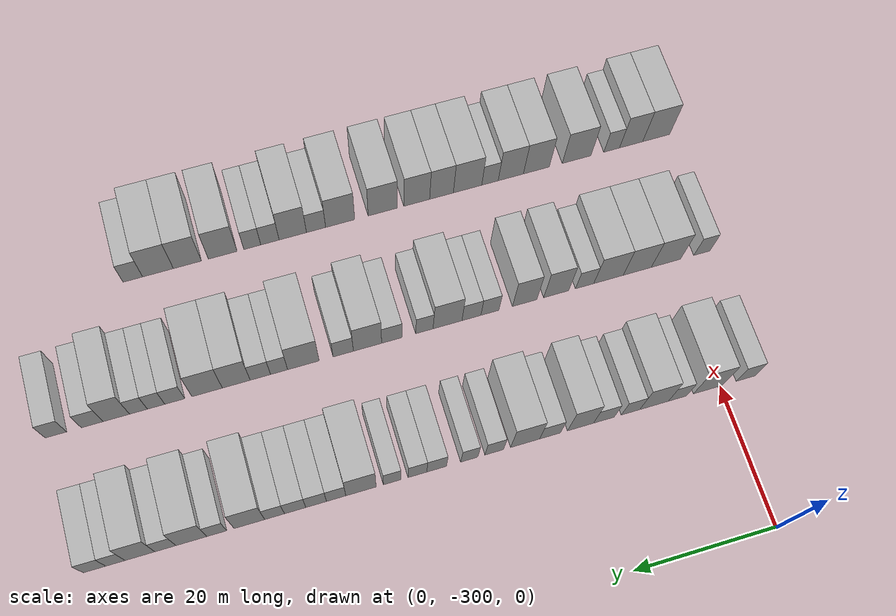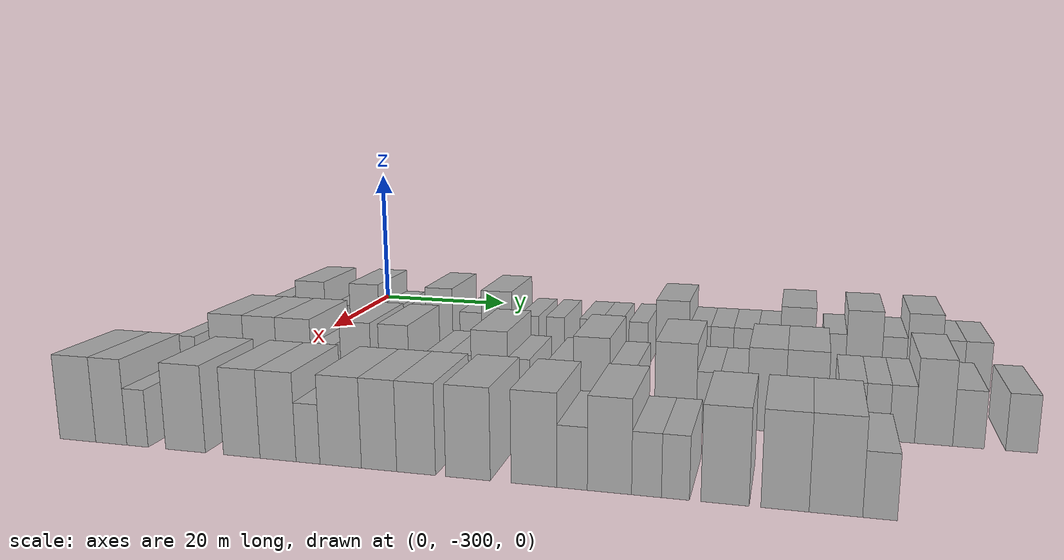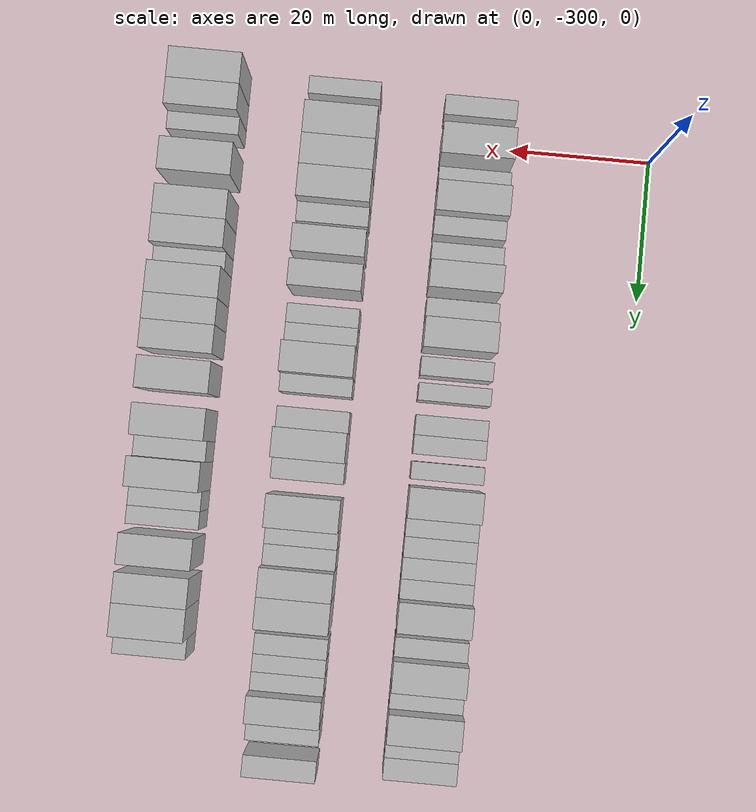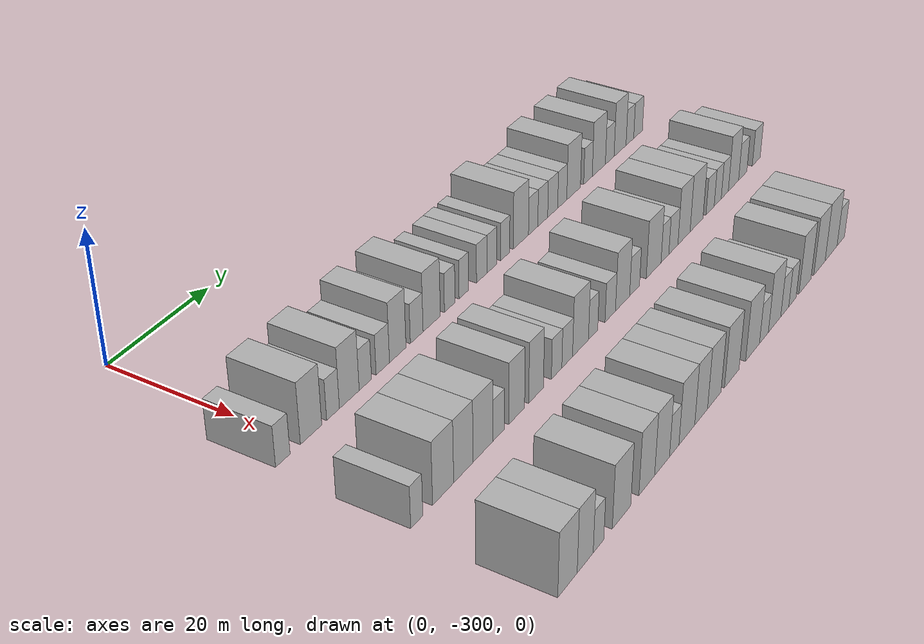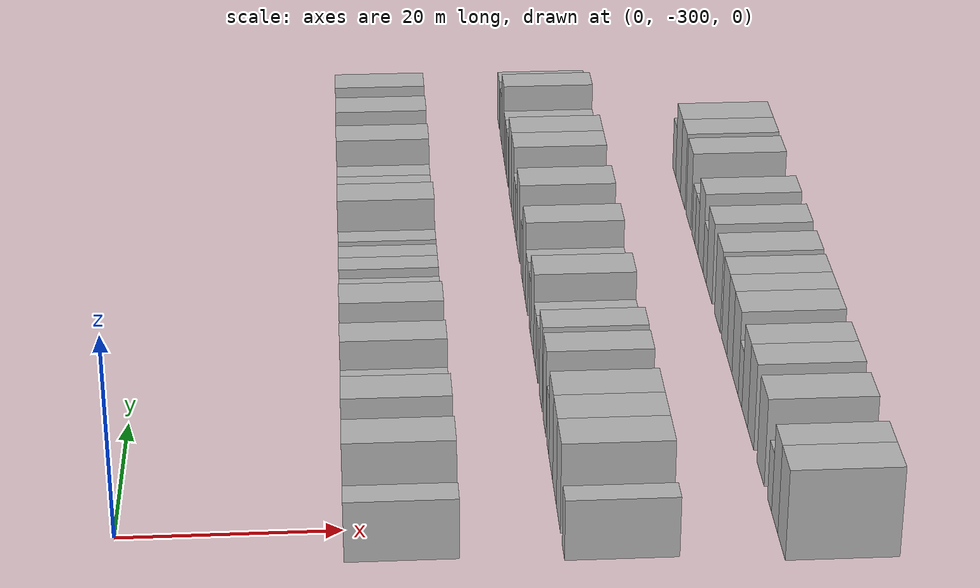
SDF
<sdf version="1.6">
 <world name="default">
  <model name="building_14">
   <static>1</static>
   <pose>25.0000 -303.7652 0 0.000000 0.000000 0.000000</pose>
   <link name="link">
    <pose>0 0 3.00 0 0 0</pose>
    <collision name="collision"><geometry><box><size>10.0000 2.7945 6.0000</size></box></geometry></collision>
    <visual name="visual">
     <cast_shadows>0</cast_shadows>
     <geometry><box><size>10.0000 2.7945 6.0000</size></box></geometry>
     <material>
      <script>
       <uri>model://HANNAS_wall/materials/scripts</uri>
       <uri>model://HANNAS_wall/materials/textures</uri>
       <name>vrc/HANNAS_wall</name>
      </script>
     </material>
    </visual>
   </link>
  </model>
  <model name="building_15">
   <static>1</static>
   <pose>25.0000 -298.2348 0 0.000000 0.000000 0.000000</pose>
   <link name="link">
    <pose>0 0 4.50 0 0 0</pose>
    <collision name="collision"><geometry><box><size>10.0000 4.2664 9.0000</size></box></geometry></collision>
    <visual name="visual">
     <cast_shadows>0</cast_shadows>
     <geometry><box><size>10.0000 4.2664 9.0000</size></box></geometry>
     <material>
      <script>
       <uri>model://HANNAS_wall/materials/scripts</uri>
       <uri>model://HANNAS_wall/materials/textures</uri>
       <name>vrc/HANNAS_wall</name>
      </script>
     </material>
    </visual>
   </link>
  </model>
  <model name="building_16">
   <static>1</static>
   <pose>25.0000 -293.7850 0 0.000000 0.000000 0.000000</pose>
   <link name="link">
    <pose>0 0 3.00 0 0 0</pose>
    <collision name="collision"><geometry><box><size>10.0000 2.6332 6.0000</size></box></geometry></collision>
    <visual name="visual">
     <cast_shadows>0</cast_shadows>
     <geometry><box><size>10.0000 2.6332 6.0000</size></box></geometry>
     <material>
      <script>
       <uri>model://HANNAS_wall/materials/scripts</uri>
       <uri>model://HANNAS_wall/materials/textures</uri>
       <name>vrc/HANNAS_wall</name>
      </script>
     </material>
    </visual>
   </link>
  </model>
  <model name="building_17">
   <static>1</static>
   <pose>25.0000 -290.3831 0 0.000000 0.000000 0.000000</pose>
   <link name="link">
    <pose>0 0 4.50 0 0 0</pose>
    <collision name="collision"><geometry><box><size>10.0000 4.1705 9.0000</size></box></geometry></collision>
    <visual name="visual">
     <cast_shadows>0</cast_shadows>
     <geometry><box><size>10.0000 4.1705 9.0000</size></box></geometry>
     <material>
      <script>
       <uri>model://HANNAS_wall/materials/scripts</uri>
       <uri>model://HANNAS_wall/materials/textures</uri>
       <name>vrc/HANNAS_wall</name>
      </script>
     </material>
    </visual>
   </link>
  </model>
  <model name="building_18">
   <static>1</static>
   <pose>25.0000 -286.9610 0 0.000000 0.000000 0.000000</pose>
   <link name="link">
    <pose>0 0 3.00 0 0 0</pose>
    <collision name="collision"><geometry><box><size>10.0000 2.6737 6.0000</size></box></geometry></collision>
    <visual name="visual">
     <cast_shadows>0</cast_shadows>
     <geometry><box><size>10.0000 2.6737 6.0000</size></box></geometry>
     <material>
      <script>
       <uri>model://HANNAS_wall/materials/scripts</uri>
       <uri>model://HANNAS_wall/materials/textures</uri>
       <name>vrc/HANNAS_wall</name>
      </script>
     </material>
    </visual>
   </link>
  </model>
  <model name="building_19">
   <static>1</static>
   <pose>25.0000 -283.1371 0 0.000000 0.000000 0.000000</pose>
   <link name="link">
    <pose>0 0 3.00 0 0 0</pose>
    <collision name="collision"><geometry><box><size>10.0000 2.9742 6.0000</size></box></geometry></collision>
    <visual name="visual">
     <cast_shadows>0</cast_shadows>
     <geometry><box><size>10.0000 2.9742 6.0000</size></box></geometry>
     <material>
      <script>
       <uri>model://HANNAS_wall/materials/scripts</uri>
       <uri>model://HANNAS_wall/materials/textures</uri>
       <name>vrc/HANNAS_wall</name>
      </script>
     </material>
    </visual>
   </link>
  </model>
  <model name="building_20">
   <static>1</static>
   <pose>25.0000 -279.7778 0 0.000000 0.000000 0.000000</pose>
   <link name="link">
    <pose>0 0 4.50 0 0 0</pose>
    <collision name="collision"><geometry><box><size>10.0000 3.7445 9.0000</size></box></geometry></collision>
    <visual name="visual">
     <cast_shadows>0</cast_shadows>
     <geometry><box><size>10.0000 3.7445 9.0000</size></box></geometry>
     <material>
      <script>
       <uri>model://HANNAS_wall/materials/scripts</uri>
       <uri>model://HANNAS_wall/materials/textures</uri>
       <name>vrc/HANNAS_wall</name>
      </script>
     </material>
    </visual>
   </link>
  </model>
  <model name="building_21">
   <static>1</static>
   <pose>25.0000 -275.4175 0 0.000000 0.000000 0.000000</pose>
   <link name="link">
    <pose>0 0 3.00 0 0 0</pose>
    <collision name="collision"><geometry><box><size>10.0000 2.9760 6.0000</size></box></geometry></collision>
    <visual name="visual">
     <cast_shadows>0</cast_shadows>
     <geometry><box><size>10.0000 2.9760 6.0000</size></box></geometry>
     <material>
      <script>
       <uri>model://HANNAS_wall/materials/scripts</uri>
       <uri>model://HANNAS_wall/materials/textures</uri>
       <name>vrc/HANNAS_wall</name>
      </script>
     </material>
    </visual>
   </link>
  </model>
  <model name="building_22">
   <static>1</static>
   <pose>25.0000 -271.8664 0 0.000000 0.000000 0.000000</pose>
   <link name="link">
    <pose>0 0 4.50 0 0 0</pose>
    <collision name="collision"><geometry><box><size>10.0000 4.1263 9.0000</size></box></geometry></collision>
    <visual name="visual">
     <cast_shadows>0</cast_shadows>
     <geometry><box><size>10.0000 4.1263 9.0000</size></box></geometry>
     <material>
      <script>
       <uri>model://HANNAS_wall/materials/scripts</uri>
       <uri>model://HANNAS_wall/materials/textures</uri>
       <name>vrc/HANNAS_wall</name>
      </script>
     </material>
    </visual>
   </link>
  </model>
  <model name="building_23">
   <static>1</static>
   <pose>25.0000 -267.4942 0 0.000000 0.000000 0.000000</pose>
   <link name="link">
    <pose>0 0 3.00 0 0 0</pose>
    <collision name="collision"><geometry><box><size>10.0000 2.6182 6.0000</size></box></geometry></collision>
    <visual name="visual">
     <cast_shadows>0</cast_shadows>
     <geometry><box><size>10.0000 2.6182 6.0000</size></box></geometry>
     <material>
      <script>
       <uri>model://HANNAS_wall/materials/scripts</uri>
       <uri>model://HANNAS_wall/materials/textures</uri>
       <name>vrc/HANNAS_wall</name>
      </script>
     </material>
    </visual>
   </link>
  </model>
  <model name="building_24">
   <static>1</static>
   <pose>25.0000 -263.9777 0 0.000000 0.000000 0.000000</pose>
   <link name="link">
    <pose>0 0 3.00 0 0 0</pose>
    <collision name="collision"><geometry><box><size>10.0000 2.4146 6.0000</size></box></geometry></collision>
    <visual name="visual">
     <cast_shadows>0</cast_shadows>
     <geometry><box><size>10.0000 2.4146 6.0000</size></box></geometry>
     <material>
      <script>
       <uri>model://HANNAS_wall/materials/scripts</uri>
       <uri>model://HANNAS_wall/materials/textures</uri>
       <name>vrc/HANNAS_wall</name>
      </script>
     </material>
    </visual>
   </link>
  </model>
  <model name="building_25">
   <static>1</static>
   <pose>25.0000 -259.4005 0 0.000000 0.000000 0.000000</pose>
   <link name="link">
    <pose>0 0 3.00 0 0 0</pose>
    <collision name="collision"><geometry><box><size>10.0000 2.7399 6.0000</size></box></geometry></collision>
    <visual name="visual">
     <cast_shadows>0</cast_shadows>
     <geometry><box><size>10.0000 2.7399 6.0000</size></box></geometry>
     <material>
      <script>
       <uri>model://HANNAS_wall/materials/scripts</uri>
       <uri>model://HANNAS_wall/materials/textures</uri>
       <name>vrc/HANNAS_wall</name>
      </script>
     </material>
    </visual>
   </link>
  </model>
  <model name="building_26">
   <static>1</static>
   <pose>25.0000 -256.7224 0 0.000000 0.000000 0.000000</pose>
   <link name="link">
    <pose>0 0 3.00 0 0 0</pose>
    <collision name="collision"><geometry><box><size>10.0000 2.6163 6.0000</size></box></geometry></collision>
    <visual name="visual">
     <cast_shadows>0</cast_shadows>
     <geometry><box><size>10.0000 2.6163 6.0000</size></box></geometry>
     <material>
      <script>
       <uri>model://HANNAS_wall/materials/scripts</uri>
       <uri>model://HANNAS_wall/materials/textures</uri>
       <name>vrc/HANNAS_wall</name>
      </script>
     </material>
    </visual>
   </link>
  </model>
  <model name="building_27">
   <static>1</static>
   <pose>25.0000 -253.2048 0 0.000000 0.000000 0.000000</pose>
   <link name="link">
    <pose>0 0 3.00 0 0 0</pose>
    <collision name="collision"><geometry><box><size>10.0000 2.4189 6.0000</size></box></geometry></collision>
    <visual name="visual">
     <cast_shadows>0</cast_shadows>
     <geometry><box><size>10.0000 2.4189 6.0000</size></box></geometry>
     <material>
      <script>
       <uri>model://HANNAS_wall/materials/scripts</uri>
       <uri>model://HANNAS_wall/materials/textures</uri>
       <name>vrc/HANNAS_wall</name>
      </script>
     </material>
    </visual>
   </link>
  </model>
  <model name="building_28">
   <static>1</static>
   <pose>25.0000 -248.9060 0 0.000000 0.000000 0.000000</pose>
   <link name="link">
    <pose>0 0 4.50 0 0 0</pose>
    <collision name="collision"><geometry><box><size>10.0000 4.1788 9.0000</size></box></geometry></collision>
    <visual name="visual">
     <cast_shadows>0</cast_shadows>
     <geometry><box><size>10.0000 4.1788 9.0000</size></box></geometry>
     <material>
      <script>
       <uri>model://HANNAS_wall/materials/scripts</uri>
       <uri>model://HANNAS_wall/materials/textures</uri>
       <name>vrc/HANNAS_wall</name>
      </script>
     </material>
    </visual>
   </link>
  </model>
  <model name="building_29">
   <static>1</static>
   <pose>25.0000 -245.4936 0 0.000000 0.000000 0.000000</pose>
   <link name="link">
    <pose>0 0 3.00 0 0 0</pose>
    <collision name="collision"><geometry><box><size>10.0000 2.6460 6.0000</size></box></geometry></collision>
    <visual name="visual">
     <cast_shadows>0</cast_shadows>
     <geometry><box><size>10.0000 2.6460 6.0000</size></box></geometry>
     <material>
      <script>
       <uri>model://HANNAS_wall/materials/scripts</uri>
       <uri>model://HANNAS_wall/materials/textures</uri>
       <name>vrc/HANNAS_wall</name>
      </script>
     </material>
    </visual>
   </link>
  </model>
  <model name="building_30">
   <static>1</static>
   <pose>25.0000 -242.7569 0 0.000000 0.000000 0.000000</pose>
   <link name="link">
    <pose>0 0 3.00 0 0 0</pose>
    <collision name="collision"><geometry><box><size>10.0000 2.8274 6.0000</size></box></geometry></collision>
    <visual name="visual">
     <cast_shadows>0</cast_shadows>
     <geometry><box><size>10.0000 2.8274 6.0000</size></box></geometry>
     <material>
      <script>
       <uri>model://HANNAS_wall/materials/scripts</uri>
       <uri>model://HANNAS_wall/materials/textures</uri>
       <name>vrc/HANNAS_wall</name>
      </script>
     </material>
    </visual>
   </link>
  </model>
  <model name="building_31">
   <static>1</static>
   <pose>25.0000 -239.8833 0 0.000000 0.000000 0.000000</pose>
   <link name="link">
    <pose>0 0 3.00 0 0 0</pose>
    <collision name="collision"><geometry><box><size>10.0000 2.9197 6.0000</size></box></geometry></collision>
    <visual name="visual">
     <cast_shadows>0</cast_shadows>
     <geometry><box><size>10.0000 2.9197 6.0000</size></box></geometry>
     <material>
      <script>
       <uri>model://HANNAS_wall/materials/scripts</uri>
       <uri>model://HANNAS_wall/materials/textures</uri>
       <name>vrc/HANNAS_wall</name>
      </script>
     </material>
    </visual>
   </link>
  </model>
  <model name="building_32">
   <static>1</static>
   <pose>25.0000 -237.0755 0 0.000000 0.000000 0.000000</pose>
   <link name="link">
    <pose>0 0 3.00 0 0 0</pose>
    <collision name="collision"><geometry><box><size>10.0000 2.6959 6.0000</size></box></geometry></collision>
    <visual name="visual">
     <cast_shadows>0</cast_shadows>
     <geometry><box><size>10.0000 2.6959 6.0000</size></box></geometry>
     <material>
      <script>
       <uri>model://HANNAS_wall/materials/scripts</uri>
       <uri>model://HANNAS_wall/materials/textures</uri>
       <name>vrc/HANNAS_wall</name>
      </script>
     </material>
    </visual>
   </link>
  </model>
  <model name="building_33">
   <static>1</static>
   <pose>25.0000 -233.6573 0 0.000000 0.000000 0.000000</pose>
   <link name="link">
    <pose>0 0 4.50 0 0 0</pose>
    <collision name="collision"><geometry><box><size>10.0000 4.1404 9.0000</size></box></geometry></collision>
    <visual name="visual">
     <cast_shadows>0</cast_shadows>
     <geometry><box><size>10.0000 4.1404 9.0000</size></box></geometry>
     <material>
      <script>
       <uri>model://HANNAS_wall/materials/scripts</uri>
       <uri>model://HANNAS_wall/materials/textures</uri>
       <name>vrc/HANNAS_wall</name>
      </script>
     </material>
    </visual>
   </link>
  </model>
  <model name="building_34">
   <static>1</static>
   <pose>25.0000 -229.2553 0 0.000000 0.000000 0.000000</pose>
   <link name="link">
    <pose>0 0 3.00 0 0 0</pose>
    <collision name="collision"><geometry><box><size>10.0000 2.6637 6.0000</size></box></geometry></collision>
    <visual name="visual">
     <cast_shadows>0</cast_shadows>
     <geometry><box><size>10.0000 2.6637 6.0000</size></box></geometry>
     <material>
      <script>
       <uri>model://HANNAS_wall/materials/scripts</uri>
       <uri>model://HANNAS_wall/materials/textures</uri>
       <name>vrc/HANNAS_wall</name>
      </script>
     </material>
    </visual>
   </link>
  </model>
  <model name="building_35">
   <static>1</static>
   <pose>25.0000 -225.8399 0 0.000000 0.000000 0.000000</pose>
   <link name="link">
    <pose>0 0 4.50 0 0 0</pose>
    <collision name="collision"><geometry><box><size>10.0000 4.1670 9.0000</size></box></geometry></collision>
    <visual name="visual">
     <cast_shadows>0</cast_shadows>
     <geometry><box><size>10.0000 4.1670 9.0000</size></box></geometry>
     <material>
      <script>
       <uri>model://HANNAS_wall/materials/scripts</uri>
       <uri>model://HANNAS_wall/materials/textures</uri>
       <name>vrc/HANNAS_wall</name>
      </script>
     </material>
    </visual>
   </link>
  </model>
  <model name="building_36">
   <static>1</static>
   <pose>25.0000 -222.3506 0 0.000000 0.000000 0.000000</pose>
   <link name="link">
    <pose>0 0 3.00 0 0 0</pose>
    <collision name="collision"><geometry><box><size>10.0000 2.8117 6.0000</size></box></geometry></collision>
    <visual name="visual">
     <cast_shadows>0</cast_shadows>
     <geometry><box><size>10.0000 2.8117 6.0000</size></box></geometry>
     <material>
      <script>
       <uri>model://HANNAS_wall/materials/scripts</uri>
       <uri>model://HANNAS_wall/materials/textures</uri>
       <name>vrc/HANNAS_wall</name>
      </script>
     </material>
    </visual>
   </link>
  </model>
  <model name="building_37">
   <static>1</static>
   <pose>25.0000 -218.9679 0 0.000000 0.000000 0.000000</pose>
   <link name="link">
    <pose>0 0 4.50 0 0 0</pose>
    <collision name="collision"><geometry><box><size>10.0000 3.9536 9.0000</size></box></geometry></collision>
    <visual name="visual">
     <cast_shadows>0</cast_shadows>
     <geometry><box><size>10.0000 3.9536 9.0000</size></box></geometry>
     <material>
      <script>
       <uri>model://HANNAS_wall/materials/scripts</uri>
       <uri>model://HANNAS_wall/materials/textures</uri>
       <name>vrc/HANNAS_wall</name>
      </script>
     </material>
    </visual>
   </link>
  </model>
  <model name="building_38">
   <static>1</static>
   <pose>25.0000 -215.7064 0 0.000000 0.000000 0.000000</pose>
   <link name="link">
    <pose>0 0 3.00 0 0 0</pose>
    <collision name="collision"><geometry><box><size>10.0000 2.5694 6.0000</size></box></geometry></collision>
    <visual name="visual">
     <cast_shadows>0</cast_shadows>
     <geometry><box><size>10.0000 2.5694 6.0000</size></box></geometry>
     <material>
      <script>
       <uri>model://HANNAS_wall/materials/scripts</uri>
       <uri>model://HANNAS_wall/materials/textures</uri>
       <name>vrc/HANNAS_wall</name>
      </script>
     </material>
    </visual>
   </link>
  </model>
  <model name="building_39">
   <static>1</static>
   <pose>25.0000 -212.9363 0 0.000000 0.000000 0.000000</pose>
   <link name="link">
    <pose>0 0 3.00 0 0 0</pose>
    <collision name="collision"><geometry><box><size>10.0000 2.9708 6.0000</size></box></geometry></collision>
    <visual name="visual">
     <cast_shadows>0</cast_shadows>
     <geometry><box><size>10.0000 2.9708 6.0000</size></box></geometry>
     <material>
      <script>
       <uri>model://HANNAS_wall/materials/scripts</uri>
       <uri>model://HANNAS_wall/materials/textures</uri>
       <name>vrc/HANNAS_wall</name>
      </script>
     </material>
    </visual>
   </link>
  </model>
  <model name="building_185">
   <static>1</static>
   <pose>44.0000 -304.7602 0 0.000000 0.000000 0.000000</pose>
   <link name="link">
    <pose>0 0 3.00 0 0 0</pose>
    <collision name="collision"><geometry><box><size>10.0000 2.4532 6.0000</size></box></geometry></collision>
    <visual name="visual">
     <cast_shadows>0</cast_shadows>
     <geometry><box><size>10.0000 2.4532 6.0000</size></box></geometry>
     <material>
      <script>
       <uri>model://HANNAS_wall/materials/scripts</uri>
       <uri>model://HANNAS_wall/materials/textures</uri>
       <name>vrc/HANNAS_wall</name>
      </script>
     </material>
    </visual>
   </link>
  </model>
  <model name="building_186">
   <static>1</static>
   <pose>44.0000 -299.3110 0 0.000000 0.000000 0.000000</pose>
   <link name="link">
    <pose>0 0 4.50 0 0 0</pose>
    <collision name="collision"><geometry><box><size>10.0000 4.4451 9.0000</size></box></geometry></collision>
    <visual name="visual">
     <cast_shadows>0</cast_shadows>
     <geometry><box><size>10.0000 4.4451 9.0000</size></box></geometry>
     <material>
      <script>
       <uri>model://HANNAS_wall/materials/scripts</uri>
       <uri>model://HANNAS_wall/materials/textures</uri>
       <name>vrc/HANNAS_wall</name>
      </script>
     </material>
    </visual>
   </link>
  </model>
  <model name="building_187">
   <static>1</static>
   <pose>44.0000 -294.9790 0 0.000000 0.000000 0.000000</pose>
   <link name="link">
    <pose>0 0 4.50 0 0 0</pose>
    <collision name="collision"><geometry><box><size>10.0000 4.2189 9.0000</size></box></geometry></collision>
    <visual name="visual">
     <cast_shadows>0</cast_shadows>
     <geometry><box><size>10.0000 4.2189 9.0000</size></box></geometry>
     <material>
      <script>
       <uri>model://HANNAS_wall/materials/scripts</uri>
       <uri>model://HANNAS_wall/materials/textures</uri>
       <name>vrc/HANNAS_wall</name>
      </script>
     </material>
    </visual>
   </link>
  </model>
  <model name="building_188">
   <static>1</static>
   <pose>44.0000 -290.6566 0 0.000000 0.000000 0.000000</pose>
   <link name="link">
    <pose>0 0 4.50 0 0 0</pose>
    <collision name="collision"><geometry><box><size>10.0000 4.4260 9.0000</size></box></geometry></collision>
    <visual name="visual">
     <cast_shadows>0</cast_shadows>
     <geometry><box><size>10.0000 4.4260 9.0000</size></box></geometry>
     <material>
      <script>
       <uri>model://HANNAS_wall/materials/scripts</uri>
       <uri>model://HANNAS_wall/materials/textures</uri>
       <name>vrc/HANNAS_wall</name>
      </script>
     </material>
    </visual>
   </link>
  </model>
  <model name="building_189">
   <static>1</static>
   <pose>44.0000 -287.0801 0 0.000000 0.000000 0.000000</pose>
   <link name="link">
    <pose>0 0 3.00 0 0 0</pose>
    <collision name="collision"><geometry><box><size>10.0000 2.7269 6.0000</size></box></geometry></collision>
    <visual name="visual">
     <cast_shadows>0</cast_shadows>
     <geometry><box><size>10.0000 2.7269 6.0000</size></box></geometry>
     <material>
      <script>
       <uri>model://HANNAS_wall/materials/scripts</uri>
       <uri>model://HANNAS_wall/materials/textures</uri>
       <name>vrc/HANNAS_wall</name>
      </script>
     </material>
    </visual>
   </link>
  </model>
  <model name="building_190">
   <static>1</static>
   <pose>44.0000 -282.8500 0 0.000000 0.000000 0.000000</pose>
   <link name="link">
    <pose>0 0 4.50 0 0 0</pose>
    <collision name="collision"><geometry><box><size>10.0000 3.7332 9.0000</size></box></geometry></collision>
    <visual name="visual">
     <cast_shadows>0</cast_shadows>
     <geometry><box><size>10.0000 3.7332 9.0000</size></box></geometry>
     <material>
      <script>
       <uri>model://HANNAS_wall/materials/scripts</uri>
       <uri>model://HANNAS_wall/materials/textures</uri>
       <name>vrc/HANNAS_wall</name>
      </script>
     </material>
    </visual>
   </link>
  </model>
  <model name="building_191">
   <static>1</static>
   <pose>44.0000 -278.1754 0 0.000000 0.000000 0.000000</pose>
   <link name="link">
    <pose>0 0 4.50 0 0 0</pose>
    <collision name="collision"><geometry><box><size>10.0000 3.6160 9.0000</size></box></geometry></collision>
    <visual name="visual">
     <cast_shadows>0</cast_shadows>
     <geometry><box><size>10.0000 3.6160 9.0000</size></box></geometry>
     <material>
      <script>
       <uri>model://HANNAS_wall/materials/scripts</uri>
       <uri>model://HANNAS_wall/materials/textures</uri>
       <name>vrc/HANNAS_wall</name>
      </script>
     </material>
    </visual>
   </link>
  </model>
  <model name="building_192">
   <static>1</static>
   <pose>44.0000 -273.0419 0 0.000000 0.000000 0.000000</pose>
   <link name="link">
    <pose>0 0 3.00 0 0 0</pose>
    <collision name="collision"><geometry><box><size>10.0000 2.6510 6.0000</size></box></geometry></collision>
    <visual name="visual">
     <cast_shadows>0</cast_shadows>
     <geometry><box><size>10.0000 2.6510 6.0000</size></box></geometry>
     <material>
      <script>
       <uri>model://HANNAS_wall/materials/scripts</uri>
       <uri>model://HANNAS_wall/materials/textures</uri>
       <name>vrc/HANNAS_wall</name>
      </script>
     </material>
    </visual>
   </link>
  </model>
  <model name="building_193">
   <static>1</static>
   <pose>44.0000 -270.3285 0 0.000000 0.000000 0.000000</pose>
   <link name="link">
    <pose>0 0 3.00 0 0 0</pose>
    <collision name="collision"><geometry><box><size>10.0000 2.7758 6.0000</size></box></geometry></collision>
    <visual name="visual">
     <cast_shadows>0</cast_shadows>
     <geometry><box><size>10.0000 2.7758 6.0000</size></box></geometry>
     <material>
      <script>
       <uri>model://HANNAS_wall/materials/scripts</uri>
       <uri>model://HANNAS_wall/materials/textures</uri>
       <name>vrc/HANNAS_wall</name>
      </script>
     </material>
    </visual>
   </link>
  </model>
  <model name="building_194">
   <static>1</static>
   <pose>44.0000 -266.8338 0 0.000000 0.000000 0.000000</pose>
   <link name="link">
    <pose>0 0 4.50 0 0 0</pose>
    <collision name="collision"><geometry><box><size>10.0000 4.2137 9.0000</size></box></geometry></collision>
    <visual name="visual">
     <cast_shadows>0</cast_shadows>
     <geometry><box><size>10.0000 4.2137 9.0000</size></box></geometry>
     <material>
      <script>
       <uri>model://HANNAS_wall/materials/scripts</uri>
       <uri>model://HANNAS_wall/materials/textures</uri>
       <name>vrc/HANNAS_wall</name>
      </script>
     </material>
    </visual>
   </link>
  </model>
  <model name="building_195">
   <static>1</static>
   <pose>44.0000 -263.4632 0 0.000000 0.000000 0.000000</pose>
   <link name="link">
    <pose>0 0 3.00 0 0 0</pose>
    <collision name="collision"><geometry><box><size>10.0000 2.5276 6.0000</size></box></geometry></collision>
    <visual name="visual">
     <cast_shadows>0</cast_shadows>
     <geometry><box><size>10.0000 2.5276 6.0000</size></box></geometry>
     <material>
      <script>
       <uri>model://HANNAS_wall/materials/scripts</uri>
       <uri>model://HANNAS_wall/materials/textures</uri>
       <name>vrc/HANNAS_wall</name>
      </script>
     </material>
    </visual>
   </link>
  </model>
  <model name="building_196">
   <static>1</static>
   <pose>44.0000 -258.7356 0 0.000000 0.000000 0.000000</pose>
   <link name="link">
    <pose>0 0 3.00 0 0 0</pose>
    <collision name="collision"><geometry><box><size>10.0000 2.9275 6.0000</size></box></geometry></collision>
    <visual name="visual">
     <cast_shadows>0</cast_shadows>
     <geometry><box><size>10.0000 2.9275 6.0000</size></box></geometry>
     <material>
      <script>
       <uri>model://HANNAS_wall/materials/scripts</uri>
       <uri>model://HANNAS_wall/materials/textures</uri>
       <name>vrc/HANNAS_wall</name>
      </script>
     </material>
    </visual>
   </link>
  </model>
  <model name="building_197">
   <static>1</static>
   <pose>44.0000 -255.2419 0 0.000000 0.000000 0.000000</pose>
   <link name="link">
    <pose>0 0 4.50 0 0 0</pose>
    <collision name="collision"><geometry><box><size>10.0000 4.0600 9.0000</size></box></geometry></collision>
    <visual name="visual">
     <cast_shadows>0</cast_shadows>
     <geometry><box><size>10.0000 4.0600 9.0000</size></box></geometry>
     <material>
      <script>
       <uri>model://HANNAS_wall/materials/scripts</uri>
       <uri>model://HANNAS_wall/materials/textures</uri>
       <name>vrc/HANNAS_wall</name>
      </script>
     </material>
    </visual>
   </link>
  </model>
  <model name="building_198">
   <static>1</static>
   <pose>44.0000 -251.7627 0 0.000000 0.000000 0.000000</pose>
   <link name="link">
    <pose>0 0 3.00 0 0 0</pose>
    <collision name="collision"><geometry><box><size>10.0000 2.8982 6.0000</size></box></geometry></collision>
    <visual name="visual">
     <cast_shadows>0</cast_shadows>
     <geometry><box><size>10.0000 2.8982 6.0000</size></box></geometry>
     <material>
      <script>
       <uri>model://HANNAS_wall/materials/scripts</uri>
       <uri>model://HANNAS_wall/materials/textures</uri>
       <name>vrc/HANNAS_wall</name>
      </script>
     </material>
    </visual>
   </link>
  </model>
  <model name="building_199">
   <static>1</static>
   <pose>44.0000 -246.0676 0 0.000000 0.000000 0.000000</pose>
   <link name="link">
    <pose>0 0 4.50 0 0 0</pose>
    <collision name="collision"><geometry><box><size>10.0000 4.4920 9.0000</size></box></geometry></collision>
    <visual name="visual">
     <cast_shadows>0</cast_shadows>
     <geometry><box><size>10.0000 4.4920 9.0000</size></box></geometry>
     <material>
      <script>
       <uri>model://HANNAS_wall/materials/scripts</uri>
       <uri>model://HANNAS_wall/materials/textures</uri>
       <name>vrc/HANNAS_wall</name>
      </script>
     </material>
    </visual>
   </link>
  </model>
  <model name="building_200">
   <static>1</static>
   <pose>44.0000 -242.6126 0 0.000000 0.000000 0.000000</pose>
   <link name="link">
    <pose>0 0 3.00 0 0 0</pose>
    <collision name="collision"><geometry><box><size>10.0000 2.4181 6.0000</size></box></geometry></collision>
    <visual name="visual">
     <cast_shadows>0</cast_shadows>
     <geometry><box><size>10.0000 2.4181 6.0000</size></box></geometry>
     <material>
      <script>
       <uri>model://HANNAS_wall/materials/scripts</uri>
       <uri>model://HANNAS_wall/materials/textures</uri>
       <name>vrc/HANNAS_wall</name>
      </script>
     </material>
    </visual>
   </link>
  </model>
  <model name="building_201">
   <static>1</static>
   <pose>44.0000 -239.9627 0 0.000000 0.000000 0.000000</pose>
   <link name="link">
    <pose>0 0 3.00 0 0 0</pose>
    <collision name="collision"><geometry><box><size>10.0000 2.8819 6.0000</size></box></geometry></collision>
    <visual name="visual">
     <cast_shadows>0</cast_shadows>
     <geometry><box><size>10.0000 2.8819 6.0000</size></box></geometry>
     <material>
      <script>
       <uri>model://HANNAS_wall/materials/scripts</uri>
       <uri>model://HANNAS_wall/materials/textures</uri>
       <name>vrc/HANNAS_wall</name>
      </script>
     </material>
    </visual>
   </link>
  </model>
  <model name="building_202">
   <static>1</static>
   <pose>44.0000 -236.5587 0 0.000000 0.000000 0.000000</pose>
   <link name="link">
    <pose>0 0 4.50 0 0 0</pose>
    <collision name="collision"><geometry><box><size>10.0000 3.9260 9.0000</size></box></geometry></collision>
    <visual name="visual">
     <cast_shadows>0</cast_shadows>
     <geometry><box><size>10.0000 3.9260 9.0000</size></box></geometry>
     <material>
      <script>
       <uri>model://HANNAS_wall/materials/scripts</uri>
       <uri>model://HANNAS_wall/materials/textures</uri>
       <name>vrc/HANNAS_wall</name>
      </script>
     </material>
    </visual>
   </link>
  </model>
  <model name="building_203">
   <static>1</static>
   <pose>44.0000 -232.4624 0 0.000000 0.000000 0.000000</pose>
   <link name="link">
    <pose>0 0 4.50 0 0 0</pose>
    <collision name="collision"><geometry><box><size>10.0000 4.2666 9.0000</size></box></geometry></collision>
    <visual name="visual">
     <cast_shadows>0</cast_shadows>
     <geometry><box><size>10.0000 4.2666 9.0000</size></box></geometry>
     <material>
      <script>
       <uri>model://HANNAS_wall/materials/scripts</uri>
       <uri>model://HANNAS_wall/materials/textures</uri>
       <name>vrc/HANNAS_wall</name>
      </script>
     </material>
    </visual>
   </link>
  </model>
  <model name="building_204">
   <static>1</static>
   <pose>44.0000 -227.9385 0 0.000000 0.000000 0.000000</pose>
   <link name="link">
    <pose>0 0 3.00 0 0 0</pose>
    <collision name="collision"><geometry><box><size>10.0000 2.7812 6.0000</size></box></geometry></collision>
    <visual name="visual">
     <cast_shadows>0</cast_shadows>
     <geometry><box><size>10.0000 2.7812 6.0000</size></box></geometry>
     <material>
      <script>
       <uri>model://HANNAS_wall/materials/scripts</uri>
       <uri>model://HANNAS_wall/materials/textures</uri>
       <name>vrc/HANNAS_wall</name>
      </script>
     </material>
    </visual>
   </link>
  </model>
  <model name="building_205">
   <static>1</static>
   <pose>44.0000 -225.3379 0 0.000000 0.000000 0.000000</pose>
   <link name="link">
    <pose>0 0 3.00 0 0 0</pose>
    <collision name="collision"><geometry><box><size>10.0000 2.4199 6.0000</size></box></geometry></collision>
    <visual name="visual">
     <cast_shadows>0</cast_shadows>
     <geometry><box><size>10.0000 2.4199 6.0000</size></box></geometry>
     <material>
      <script>
       <uri>model://HANNAS_wall/materials/scripts</uri>
       <uri>model://HANNAS_wall/materials/textures</uri>
       <name>vrc/HANNAS_wall</name>
      </script>
     </material>
    </visual>
   </link>
  </model>
  <model name="building_206">
   <static>1</static>
   <pose>44.0000 -222.8870 0 0.000000 0.000000 0.000000</pose>
   <link name="link">
    <pose>0 0 3.00 0 0 0</pose>
    <collision name="collision"><geometry><box><size>10.0000 2.4818 6.0000</size></box></geometry></collision>
    <visual name="visual">
     <cast_shadows>0</cast_shadows>
     <geometry><box><size>10.0000 2.4818 6.0000</size></box></geometry>
     <material>
      <script>
       <uri>model://HANNAS_wall/materials/scripts</uri>
       <uri>model://HANNAS_wall/materials/textures</uri>
       <name>vrc/HANNAS_wall</name>
      </script>
     </material>
    </visual>
   </link>
  </model>
  <model name="building_207">
   <static>1</static>
   <pose>44.0000 -219.8172 0 0.000000 0.000000 0.000000</pose>
   <link name="link">
    <pose>0 0 4.50 0 0 0</pose>
    <collision name="collision"><geometry><box><size>10.0000 3.6579 9.0000</size></box></geometry></collision>
    <visual name="visual">
     <cast_shadows>0</cast_shadows>
     <geometry><box><size>10.0000 3.6579 9.0000</size></box></geometry>
     <material>
      <script>
       <uri>model://HANNAS_wall/materials/scripts</uri>
       <uri>model://HANNAS_wall/materials/textures</uri>
       <name>vrc/HANNAS_wall</name>
      </script>
     </material>
    </visual>
   </link>
  </model>
  <model name="building_208">
   <static>1</static>
   <pose>44.0000 -216.4902 0 0.000000 0.000000 0.000000</pose>
   <link name="link">
    <pose>0 0 3.00 0 0 0</pose>
    <collision name="collision"><geometry><box><size>10.0000 2.9961 6.0000</size></box></geometry></collision>
    <visual name="visual">
     <cast_shadows>0</cast_shadows>
     <geometry><box><size>10.0000 2.9961 6.0000</size></box></geometry>
     <material>
      <script>
       <uri>model://HANNAS_wall/materials/scripts</uri>
       <uri>model://HANNAS_wall/materials/textures</uri>
       <name>vrc/HANNAS_wall</name>
      </script>
     </material>
    </visual>
   </link>
  </model>
  <model name="building_209">
   <static>1</static>
   <pose>44.0000 -211.5194 0 0.000000 0.000000 0.000000</pose>
   <link name="link">
    <pose>0 0 3.00 0 0 0</pose>
    <collision name="collision"><geometry><box><size>10.0000 2.9456 6.0000</size></box></geometry></collision>
    <visual name="visual">
     <cast_shadows>0</cast_shadows>
     <geometry><box><size>10.0000 2.9456 6.0000</size></box></geometry>
     <material>
      <script>
       <uri>model://HANNAS_wall/materials/scripts</uri>
       <uri>model://HANNAS_wall/materials/textures</uri>
       <name>vrc/HANNAS_wall</name>
      </script>
     </material>
    </visual>
   </link>
  </model>
  <model name="building_359">
   <static>1</static>
   <pose>63.0000 -304.9895 0 0.000000 0.000000 0.000000</pose>
   <link name="link">
    <pose>0 0 4.50 0 0 0</pose>
    <collision name="collision"><geometry><box><size>10.0000 4.2448 9.0000</size></box></geometry></collision>
    <visual name="visual">
     <cast_shadows>0</cast_shadows>
     <geometry><box><size>10.0000 4.2448 9.0000</size></box></geometry>
     <material>
      <script>
       <uri>model://HANNAS_wall/materials/scripts</uri>
       <uri>model://HANNAS_wall/materials/textures</uri>
       <name>vrc/HANNAS_wall</name>
      </script>
     </material>
    </visual>
   </link>
  </model>
  <model name="building_360">
   <static>1</static>
   <pose>63.0000 -301.0579 0 0.000000 0.000000 0.000000</pose>
   <link name="link">
    <pose>0 0 4.50 0 0 0</pose>
    <collision name="collision"><geometry><box><size>10.0000 3.6182 9.0000</size></box></geometry></collision>
    <visual name="visual">
     <cast_shadows>0</cast_shadows>
     <geometry><box><size>10.0000 3.6182 9.0000</size></box></geometry>
     <material>
      <script>
       <uri>model://HANNAS_wall/materials/scripts</uri>
       <uri>model://HANNAS_wall/materials/textures</uri>
       <name>vrc/HANNAS_wall</name>
      </script>
     </material>
    </visual>
   </link>
  </model>
  <model name="building_361">
   <static>1</static>
   <pose>63.0000 -298.0235 0 0.000000 0.000000 0.000000</pose>
   <link name="link">
    <pose>0 0 3.00 0 0 0</pose>
    <collision name="collision"><geometry><box><size>10.0000 2.4507 6.0000</size></box></geometry></collision>
    <visual name="visual">
     <cast_shadows>0</cast_shadows>
     <geometry><box><size>10.0000 2.4507 6.0000</size></box></geometry>
     <material>
      <script>
       <uri>model://HANNAS_wall/materials/scripts</uri>
       <uri>model://HANNAS_wall/materials/textures</uri>
       <name>vrc/HANNAS_wall</name>
      </script>
     </material>
    </visual>
   </link>
  </model>
  <model name="building_362">
   <static>1</static>
   <pose>63.0000 -292.5671 0 0.000000 0.000000 0.000000</pose>
   <link name="link">
    <pose>0 0 4.50 0 0 0</pose>
    <collision name="collision"><geometry><box><size>10.0000 4.4619 9.0000</size></box></geometry></collision>
    <visual name="visual">
     <cast_shadows>0</cast_shadows>
     <geometry><box><size>10.0000 4.4619 9.0000</size></box></geometry>
     <material>
      <script>
       <uri>model://HANNAS_wall/materials/scripts</uri>
       <uri>model://HANNAS_wall/materials/textures</uri>
       <name>vrc/HANNAS_wall</name>
      </script>
     </material>
    </visual>
   </link>
  </model>
  <model name="building_363">
   <static>1</static>
   <pose>63.0000 -286.3380 0 0.000000 0.000000 0.000000</pose>
   <link name="link">
    <pose>0 0 4.50 0 0 0</pose>
    <collision name="collision"><geometry><box><size>10.0000 3.9963 9.0000</size></box></geometry></collision>
    <visual name="visual">
     <cast_shadows>0</cast_shadows>
     <geometry><box><size>10.0000 3.9963 9.0000</size></box></geometry>
     <material>
      <script>
       <uri>model://HANNAS_wall/materials/scripts</uri>
       <uri>model://HANNAS_wall/materials/textures</uri>
       <name>vrc/HANNAS_wall</name>
      </script>
     </material>
    </visual>
   </link>
  </model>
  <model name="building_364">
   <static>1</static>
   <pose>63.0000 -282.4082 0 0.000000 0.000000 0.000000</pose>
   <link name="link">
    <pose>0 0 4.50 0 0 0</pose>
    <collision name="collision"><geometry><box><size>10.0000 3.8633 9.0000</size></box></geometry></collision>
    <visual name="visual">
     <cast_shadows>0</cast_shadows>
     <geometry><box><size>10.0000 3.8633 9.0000</size></box></geometry>
     <material>
      <script>
       <uri>model://HANNAS_wall/materials/scripts</uri>
       <uri>model://HANNAS_wall/materials/textures</uri>
       <name>vrc/HANNAS_wall</name>
      </script>
     </material>
    </visual>
   </link>
  </model>
  <model name="building_365">
   <static>1</static>
   <pose>63.0000 -279.2154 0 0.000000 0.000000 0.000000</pose>
   <link name="link">
    <pose>0 0 3.00 0 0 0</pose>
    <collision name="collision"><geometry><box><size>10.0000 2.5223 6.0000</size></box></geometry></collision>
    <visual name="visual">
     <cast_shadows>0</cast_shadows>
     <geometry><box><size>10.0000 2.5223 6.0000</size></box></geometry>
     <material>
      <script>
       <uri>model://HANNAS_wall/materials/scripts</uri>
       <uri>model://HANNAS_wall/materials/textures</uri>
       <name>vrc/HANNAS_wall</name>
      </script>
     </material>
    </visual>
   </link>
  </model>
  <model name="building_366">
   <static>1</static>
   <pose>63.0000 -275.7952 0 0.000000 0.000000 0.000000</pose>
   <link name="link">
    <pose>0 0 4.50 0 0 0</pose>
    <collision name="collision"><geometry><box><size>10.0000 4.3182 9.0000</size></box></geometry></collision>
    <visual name="visual">
     <cast_shadows>0</cast_shadows>
     <geometry><box><size>10.0000 4.3182 9.0000</size></box></geometry>
     <material>
      <script>
       <uri>model://HANNAS_wall/materials/scripts</uri>
       <uri>model://HANNAS_wall/materials/textures</uri>
       <name>vrc/HANNAS_wall</name>
      </script>
     </material>
    </visual>
   </link>
  </model>
  <model name="building_367">
   <static>1</static>
   <pose>63.0000 -271.8352 0 0.000000 0.000000 0.000000</pose>
   <link name="link">
    <pose>0 0 4.50 0 0 0</pose>
    <collision name="collision"><geometry><box><size>10.0000 3.6018 9.0000</size></box></geometry></collision>
    <visual name="visual">
     <cast_shadows>0</cast_shadows>
     <geometry><box><size>10.0000 3.6018 9.0000</size></box></geometry>
     <material>
      <script>
       <uri>model://HANNAS_wall/materials/scripts</uri>
       <uri>model://HANNAS_wall/materials/textures</uri>
       <name>vrc/HANNAS_wall</name>
      </script>
     </material>
    </visual>
   </link>
  </model>
  <model name="building_368">
   <static>1</static>
   <pose>63.0000 -268.0879 0 0.000000 0.000000 0.000000</pose>
   <link name="link">
    <pose>0 0 4.50 0 0 0</pose>
    <collision name="collision"><geometry><box><size>10.0000 3.8927 9.0000</size></box></geometry></collision>
    <visual name="visual">
     <cast_shadows>0</cast_shadows>
     <geometry><box><size>10.0000 3.8927 9.0000</size></box></geometry>
     <material>
      <script>
       <uri>model://HANNAS_wall/materials/scripts</uri>
       <uri>model://HANNAS_wall/materials/textures</uri>
       <name>vrc/HANNAS_wall</name>
      </script>
     </material>
    </visual>
   </link>
  </model>
  <model name="building_369">
   <static>1</static>
   <pose>63.0000 -262.9565 0 0.000000 0.000000 0.000000</pose>
   <link name="link">
    <pose>0 0 4.50 0 0 0</pose>
    <collision name="collision"><geometry><box><size>10.0000 4.3702 9.0000</size></box></geometry></collision>
    <visual name="visual">
     <cast_shadows>0</cast_shadows>
     <geometry><box><size>10.0000 4.3702 9.0000</size></box></geometry>
     <material>
      <script>
       <uri>model://HANNAS_wall/materials/scripts</uri>
       <uri>model://HANNAS_wall/materials/textures</uri>
       <name>vrc/HANNAS_wall</name>
      </script>
     </material>
    </visual>
   </link>
  </model>
  <model name="building_370">
   <static>1</static>
   <pose>63.0000 -256.6036 0 0.000000 0.000000 0.000000</pose>
   <link name="link">
    <pose>0 0 4.50 0 0 0</pose>
    <collision name="collision"><geometry><box><size>10.0000 4.3356 9.0000</size></box></geometry></collision>
    <visual name="visual">
     <cast_shadows>0</cast_shadows>
     <geometry><box><size>10.0000 4.3356 9.0000</size></box></geometry>
     <material>
      <script>
       <uri>model://HANNAS_wall/materials/scripts</uri>
       <uri>model://HANNAS_wall/materials/textures</uri>
       <name>vrc/HANNAS_wall</name>
      </script>
     </material>
    </visual>
   </link>
  </model>
  <model name="building_371">
   <static>1</static>
   <pose>63.0000 -253.0152 0 0.000000 0.000000 0.000000</pose>
   <link name="link">
    <pose>0 0 3.00 0 0 0</pose>
    <collision name="collision"><geometry><box><size>10.0000 2.8411 6.0000</size></box></geometry></collision>
    <visual name="visual">
     <cast_shadows>0</cast_shadows>
     <geometry><box><size>10.0000 2.8411 6.0000</size></box></geometry>
     <material>
      <script>
       <uri>model://HANNAS_wall/materials/scripts</uri>
       <uri>model://HANNAS_wall/materials/textures</uri>
       <name>vrc/HANNAS_wall</name>
      </script>
     </material>
    </visual>
   </link>
  </model>
  <model name="building_372">
   <static>1</static>
   <pose>63.0000 -249.5663 0 0.000000 0.000000 0.000000</pose>
   <link name="link">
    <pose>0 0 4.50 0 0 0</pose>
    <collision name="collision"><geometry><box><size>10.0000 4.0567 9.0000</size></box></geometry></collision>
    <visual name="visual">
     <cast_shadows>0</cast_shadows>
     <geometry><box><size>10.0000 4.0567 9.0000</size></box></geometry>
     <material>
      <script>
       <uri>model://HANNAS_wall/materials/scripts</uri>
       <uri>model://HANNAS_wall/materials/textures</uri>
       <name>vrc/HANNAS_wall</name>
      </script>
     </material>
    </visual>
   </link>
  </model>
  <model name="building_373">
   <static>1</static>
   <pose>63.0000 -246.1912 0 0.000000 0.000000 0.000000</pose>
   <link name="link">
    <pose>0 0 3.00 0 0 0</pose>
    <collision name="collision"><geometry><box><size>10.0000 2.6933 6.0000</size></box></geometry></collision>
    <visual name="visual">
     <cast_shadows>0</cast_shadows>
     <geometry><box><size>10.0000 2.6933 6.0000</size></box></geometry>
     <material>
      <script>
       <uri>model://HANNAS_wall/materials/scripts</uri>
       <uri>model://HANNAS_wall/materials/textures</uri>
       <name>vrc/HANNAS_wall</name>
      </script>
     </material>
    </visual>
   </link>
  </model>
  <model name="building_374">
   <static>1</static>
   <pose>63.0000 -243.6004 0 0.000000 0.000000 0.000000</pose>
   <link name="link">
    <pose>0 0 3.00 0 0 0</pose>
    <collision name="collision"><geometry><box><size>10.0000 2.4884 6.0000</size></box></geometry></collision>
    <visual name="visual">
     <cast_shadows>0</cast_shadows>
     <geometry><box><size>10.0000 2.4884 6.0000</size></box></geometry>
     <material>
      <script>
       <uri>model://HANNAS_wall/materials/scripts</uri>
       <uri>model://HANNAS_wall/materials/textures</uri>
       <name>vrc/HANNAS_wall</name>
      </script>
     </material>
    </visual>
   </link>
  </model>
  <model name="building_375">
   <static>1</static>
   <pose>63.0000 -239.2523 0 0.000000 0.000000 0.000000</pose>
   <link name="link">
    <pose>0 0 4.50 0 0 0</pose>
    <collision name="collision"><geometry><box><size>10.0000 4.2079 9.0000</size></box></geometry></collision>
    <visual name="visual">
     <cast_shadows>0</cast_shadows>
     <geometry><box><size>10.0000 4.2079 9.0000</size></box></geometry>
     <material>
      <script>
       <uri>model://HANNAS_wall/materials/scripts</uri>
       <uri>model://HANNAS_wall/materials/textures</uri>
       <name>vrc/HANNAS_wall</name>
      </script>
     </material>
    </visual>
   </link>
  </model>
  <model name="building_376">
   <static>1</static>
   <pose>63.0000 -234.1067 0 0.000000 0.000000 0.000000</pose>
   <link name="link">
    <pose>0 0 4.50 0 0 0</pose>
    <collision name="collision"><geometry><box><size>10.0000 4.0834 9.0000</size></box></geometry></collision>
    <visual name="visual">
     <cast_shadows>0</cast_shadows>
     <geometry><box><size>10.0000 4.0834 9.0000</size></box></geometry>
     <material>
      <script>
       <uri>model://HANNAS_wall/materials/scripts</uri>
       <uri>model://HANNAS_wall/materials/textures</uri>
       <name>vrc/HANNAS_wall</name>
      </script>
     </material>
    </visual>
   </link>
  </model>
  <model name="building_377">
   <static>1</static>
   <pose>63.0000 -229.8429 0 0.000000 0.000000 0.000000</pose>
   <link name="link">
    <pose>0 0 4.50 0 0 0</pose>
    <collision name="collision"><geometry><box><size>10.0000 4.4441 9.0000</size></box></geometry></collision>
    <visual name="visual">
     <cast_shadows>0</cast_shadows>
     <geometry><box><size>10.0000 4.4441 9.0000</size></box></geometry>
     <material>
      <script>
       <uri>model://HANNAS_wall/materials/scripts</uri>
       <uri>model://HANNAS_wall/materials/textures</uri>
       <name>vrc/HANNAS_wall</name>
      </script>
     </material>
    </visual>
   </link>
  </model>
  <model name="building_378">
   <static>1</static>
   <pose>63.0000 -226.2093 0 0.000000 0.000000 0.000000</pose>
   <link name="link">
    <pose>0 0 3.00 0 0 0</pose>
    <collision name="collision"><geometry><box><size>10.0000 2.8232 6.0000</size></box></geometry></collision>
    <visual name="visual">
     <cast_shadows>0</cast_shadows>
     <geometry><box><size>10.0000 2.8232 6.0000</size></box></geometry>
     <material>
      <script>
       <uri>model://HANNAS_wall/materials/scripts</uri>
       <uri>model://HANNAS_wall/materials/textures</uri>
       <name>vrc/HANNAS_wall</name>
      </script>
     </material>
    </visual>
   </link>
  </model>
 </world>
</sdf>
